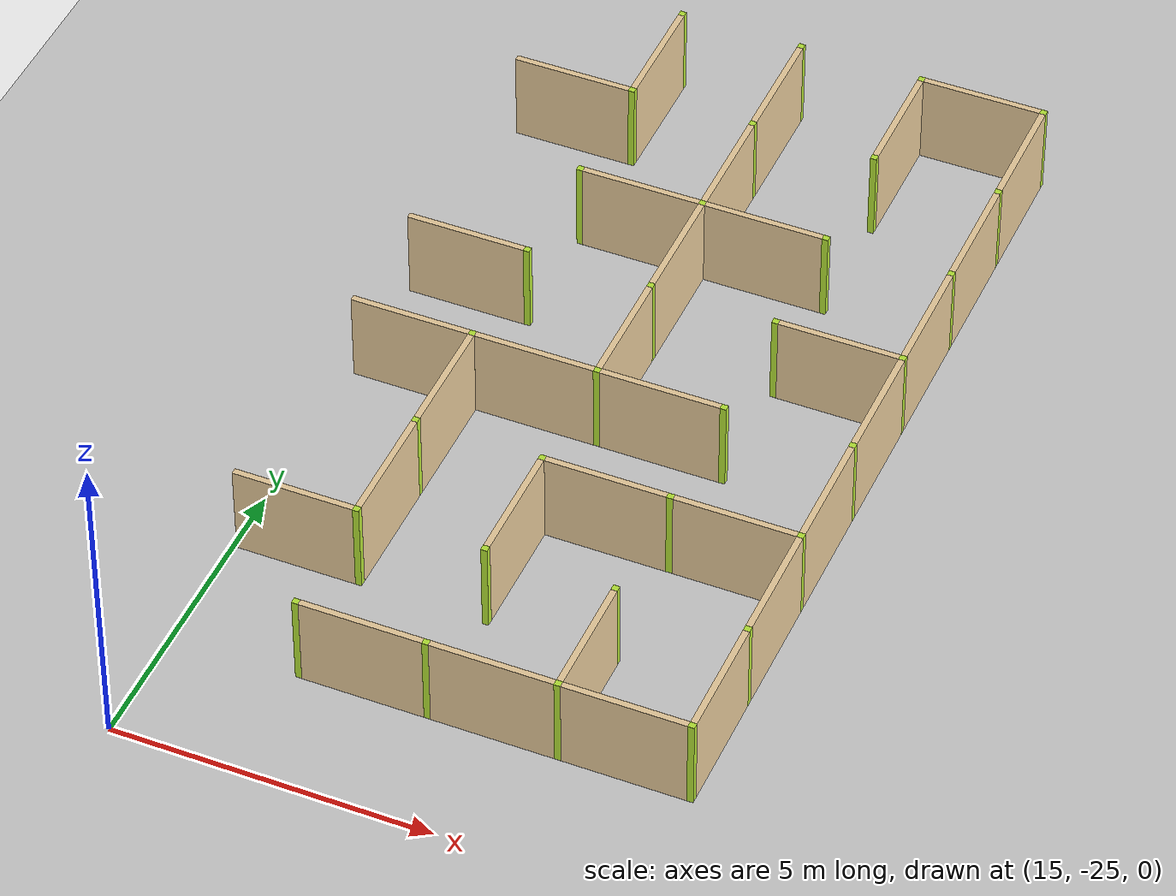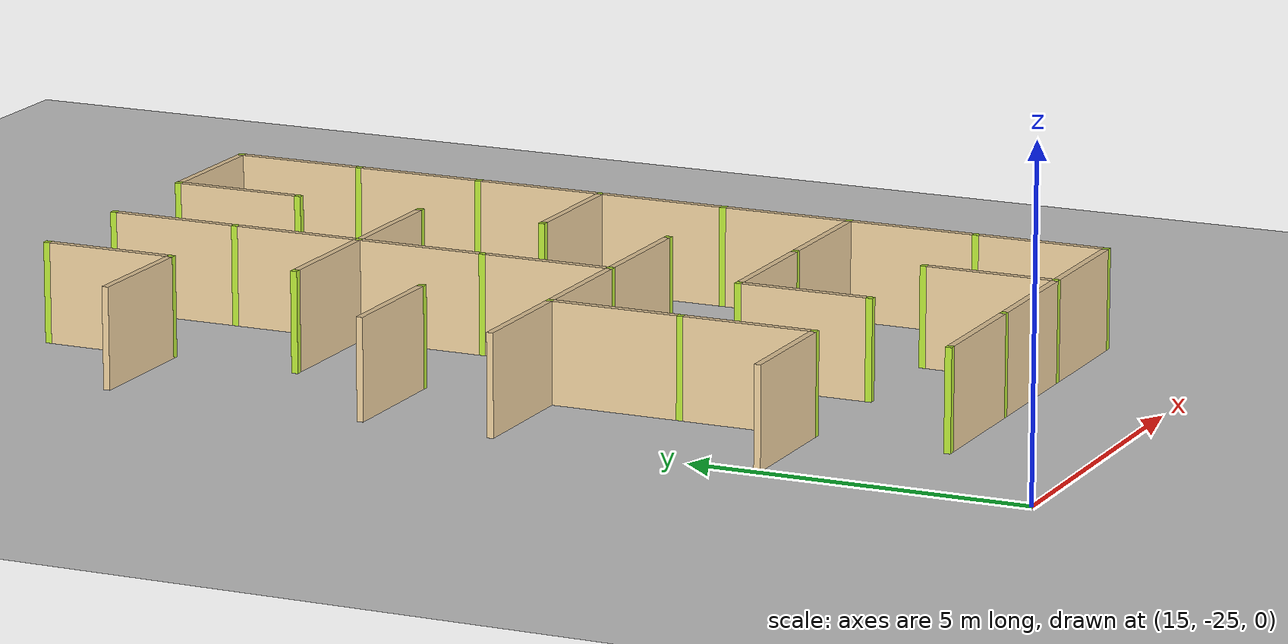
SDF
<sdf version="1.4">
 <world name="maze_world">
  <model name="ground">
   <static>true</static>
   <link name="ground_link">
    <collision name="collision1"><geometry><plane><normal>0 0 1</normal></plane></geometry></collision>
    <visual name="visual1"><geometry><plane><normal>0 0 1</normal><size>100 100</size></plane></geometry></visual>
   </link>
  </model>
  <model name="Untitled">
   <link name="Wall_12_8_v">
    <collision name="Wall_0_Collision">
     <geometry><box><size>1.9 0.1 1.5</size></box></geometry>
     <pose>0 0 0.75 0 -0 0</pose>
    </collision>
    <visual name="Wall_0_Visual">
     <pose>0 0 0.75 0 -0 0</pose>
     <geometry><box><size>1.9 0.1 1.5</size></box></geometry>
     <material>
      <script><uri>file://media/materials/scripts/gazebo.material</uri><name>Gazebo/Grey</name></script>
      <ambient>0.921569 0.807843 0.615686 1</ambient>
     </material>
     <meta><layer>0</layer></meta>
    </visual>
    <pose>17 -10.0 0 0 -0 1.5708</pose>
    <sensor name="my_contact" type="contact">
     <contact><collision>box_collision</collision><topic>/rover_collision</topic></contact>
    </sensor>
   </link>
   <link name="Joint_17_-9">
    <collision name="Wall_2_Collision">
     <geometry><box><size>0.1 0.1 1.5</size></box></geometry>
     <pose>0 0 0.75 0 -0 0</pose>
    </collision>
    <visual name="Wall_2_Visual">
     <pose>0 0 0.75 0 -0 0</pose>
     <geometry><box><size>0.1 0.1 1.5</size></box></geometry>
     <material>
      <script><uri>file://media/materials/scripts/gazebo.material</uri><name>Gazebo/Grey</name></script>
      <ambient>0.721569 0.907843 0.215686 1</ambient>
     </material>
     <meta><layer>0</layer></meta>
    </visual>
    <pose>17 -9 0 0 -0 0</pose>
    <sensor name="my_contact" type="contact">
     <contact><collision>box_collision</collision><topic>/rover_collision</topic></contact>
    </sensor>
   </link>
   <link name="Wall_13_8_v">
    <collision name="Wall_0_Collision">
     <geometry><box><size>1.9 0.1 1.5</size></box></geometry>
     <pose>0 0 0.75 0 -0 0</pose>
    </collision>
    <visual name="Wall_0_Visual">
     <pose>0 0 0.75 0 -0 0</pose>
     <geometry><box><size>1.9 0.1 1.5</size></box></geometry>
     <material>
      <script><uri>file://media/materials/scripts/gazebo.material</uri><name>Gazebo/Grey</name></script>
      <ambient>0.921569 0.807843 0.615686 1</ambient>
     </material>
     <meta><layer>0</layer></meta>
    </visual>
    <pose>19 -10.0 0 0 -0 1.5708</pose>
    <sensor name="my_contact" type="contact">
     <contact><collision>box_collision</collision><topic>/rover_collision</topic></contact>
    </sensor>
   </link>
   <link name="Joint_19_-9">
    <collision name="Wall_2_Collision">
     <geometry><box><size>0.1 0.1 1.5</size></box></geometry>
     <pose>0 0 0.75 0 -0 0</pose>
    </collision>
    <visual name="Wall_2_Visual">
     <pose>0 0 0.75 0 -0 0</pose>
     <geometry><box><size>0.1 0.1 1.5</size></box></geometry>
     <material>
      <script><uri>file://media/materials/scripts/gazebo.material</uri><name>Gazebo/Grey</name></script>
      <ambient>0.721569 0.907843 0.215686 1</ambient>
     </material>
     <meta><layer>0</layer></meta>
    </visual>
    <pose>19 -9 0 0 -0 0</pose>
    <sensor name="my_contact" type="contact">
     <contact><collision>box_collision</collision><topic>/rover_collision</topic></contact>
    </sensor>
   </link>
   <link name="Wall_14_8_h">
    <collision name="Wall_0_Collision">
     <geometry><box><size>1.9 0.1 1.5</size></box></geometry>
     <pose>0 0 0.75 0 -0 0</pose>
    </collision>
    <visual name="Wall_0_Visual">
     <pose>0 0 0.75 0 -0 0</pose>
     <geometry><box><size>1.9 0.1 1.5</size></box></geometry>
     <material>
      <script><uri>file://media/materials/scripts/gazebo.material</uri><name>Gazebo/Grey</name></script>
      <ambient>0.921569 0.807843 0.615686 1</ambient>
     </material>
     <meta><layer>0</layer></meta>
    </visual>
    <pose>22.0 -9 0 0 -0 0</pose>
    <sensor name="my_contact" type="contact">
     <contact><collision>box_collision</collision><topic>/rover_collision</topic></contact>
    </sensor>
   </link>
   <link name="Wall_14_8_v">
    <collision name="Wall_0_Collision">
     <geometry><box><size>1.9 0.1 1.5</size></box></geometry>
     <pose>0 0 0.75 0 -0 0</pose>
    </collision>
    <visual name="Wall_0_Visual">
     <pose>0 0 0.75 0 -0 0</pose>
     <geometry><box><size>1.9 0.1 1.5</size></box></geometry>
     <material>
      <script><uri>file://media/materials/scripts/gazebo.material</uri><name>Gazebo/Grey</name></script>
      <ambient>0.921569 0.807843 0.615686 1</ambient>
     </material>
     <meta><layer>0</layer></meta>
    </visual>
    <pose>21 -10.0 0 0 -0 1.5708</pose>
    <sensor name="my_contact" type="contact">
     <contact><collision>box_collision</collision><topic>/rover_collision</topic></contact>
    </sensor>
   </link>
   <link name="Joint_21_-9">
    <collision name="Wall_2_Collision">
     <geometry><box><size>0.1 0.1 1.5</size></box></geometry>
     <pose>0 0 0.75 0 -0 0</pose>
    </collision>
    <visual name="Wall_2_Visual">
     <pose>0 0 0.75 0 -0 0</pose>
     <geometry><box><size>0.1 0.1 1.5</size></box></geometry>
     <material>
      <script><uri>file://media/materials/scripts/gazebo.material</uri><name>Gazebo/Grey</name></script>
      <ambient>0.721569 0.907843 0.215686 1</ambient>
     </material>
     <meta><layer>0</layer></meta>
    </visual>
    <pose>21 -9 0 0 -0 0</pose>
    <sensor name="my_contact" type="contact">
     <contact><collision>box_collision</collision><topic>/rover_collision</topic></contact>
    </sensor>
   </link>
   <link name="Wall_15_8_v">
    <collision name="Wall_0_Collision">
     <geometry><box><size>1.9 0.1 1.5</size></box></geometry>
     <pose>0 0 0.75 0 -0 0</pose>
    </collision>
    <visual name="Wall_0_Visual">
     <pose>0 0 0.75 0 -0 0</pose>
     <geometry><box><size>1.9 0.1 1.5</size></box></geometry>
     <material>
      <script><uri>file://media/materials/scripts/gazebo.material</uri><name>Gazebo/Grey</name></script>
      <ambient>0.921569 0.807843 0.615686 1</ambient>
     </material>
     <meta><layer>0</layer></meta>
    </visual>
    <pose>23 -10.0 0 0 -0 1.5708</pose>
    <sensor name="my_contact" type="contact">
     <contact><collision>box_collision</collision><topic>/rover_collision</topic></contact>
    </sensor>
   </link>
   <link name="Joint_23_-9">
    <collision name="Wall_2_Collision">
     <geometry><box><size>0.1 0.1 1.5</size></box></geometry>
     <pose>0 0 0.75 0 -0 0</pose>
    </collision>
    <visual name="Wall_2_Visual">
     <pose>0 0 0.75 0 -0 0</pose>
     <geometry><box><size>0.1 0.1 1.5</size></box></geometry>
     <material>
      <script><uri>file://media/materials/scripts/gazebo.material</uri><name>Gazebo/Grey</name></script>
      <ambient>0.721569 0.907843 0.215686 1</ambient>
     </material>
     <meta><layer>0</layer></meta>
    </visual>
    <pose>23 -9 0 0 -0 0</pose>
    <sensor name="my_contact" type="contact">
     <contact><collision>box_collision</collision><topic>/rover_collision</topic></contact>
    </sensor>
   </link>
   <link name="Wall_11_9_h">
    <collision name="Wall_0_Collision">
     <geometry><box><size>1.9 0.1 1.5</size></box></geometry>
     <pose>0 0 0.75 0 -0 0</pose>
    </collision>
    <visual name="Wall_0_Visual">
     <pose>0 0 0.75 0 -0 0</pose>
     <geometry><box><size>1.9 0.1 1.5</size></box></geometry>
     <material>
      <script><uri>file://media/materials/scripts/gazebo.material</uri><name>Gazebo/Grey</name></script>
      <ambient>0.921569 0.807843 0.615686 1</ambient>
     </material>
     <meta><layer>0</layer></meta>
    </visual>
    <pose>16.0 -11 0 0 -0 0</pose>
    <sensor name="my_contact" type="contact">
     <contact><collision>box_collision</collision><topic>/rover_collision</topic></contact>
    </sensor>
   </link>
   <link name="Joint_17_-11">
    <collision name="Wall_2_Collision">
     <geometry><box><size>0.1 0.1 1.5</size></box></geometry>
     <pose>0 0 0.75 0 -0 0</pose>
    </collision>
    <visual name="Wall_2_Visual">
     <pose>0 0 0.75 0 -0 0</pose>
     <geometry><box><size>0.1 0.1 1.5</size></box></geometry>
     <material>
      <script><uri>file://media/materials/scripts/gazebo.material</uri><name>Gazebo/Grey</name></script>
      <ambient>0.721569 0.907843 0.215686 1</ambient>
     </material>
     <meta><layer>0</layer></meta>
    </visual>
    <pose>17 -11 0 0 -0 0</pose>
    <sensor name="my_contact" type="contact">
     <contact><collision>box_collision</collision><topic>/rover_collision</topic></contact>
    </sensor>
   </link>
   <link name="Wall_13_9_v">
    <collision name="Wall_0_Collision">
     <geometry><box><size>1.9 0.1 1.5</size></box></geometry>
     <pose>0 0 0.75 0 -0 0</pose>
    </collision>
    <visual name="Wall_0_Visual">
     <pose>0 0 0.75 0 -0 0</pose>
     <geometry><box><size>1.9 0.1 1.5</size></box></geometry>
     <material>
      <script><uri>file://media/materials/scripts/gazebo.material</uri><name>Gazebo/Grey</name></script>
      <ambient>0.921569 0.807843 0.615686 1</ambient>
     </material>
     <meta><layer>0</layer></meta>
    </visual>
    <pose>19 -12.0 0 0 -0 1.5708</pose>
    <sensor name="my_contact" type="contact">
     <contact><collision>box_collision</collision><topic>/rover_collision</topic></contact>
    </sensor>
   </link>
   <link name="Joint_19_-11">
    <collision name="Wall_2_Collision">
     <geometry><box><size>0.1 0.1 1.5</size></box></geometry>
     <pose>0 0 0.75 0 -0 0</pose>
    </collision>
    <visual name="Wall_2_Visual">
     <pose>0 0 0.75 0 -0 0</pose>
     <geometry><box><size>0.1 0.1 1.5</size></box></geometry>
     <material>
      <script><uri>file://media/materials/scripts/gazebo.material</uri><name>Gazebo/Grey</name></script>
      <ambient>0.721569 0.907843 0.215686 1</ambient>
     </material>
     <meta><layer>0</layer></meta>
    </visual>
    <pose>19 -11 0 0 -0 0</pose>
    <sensor name="my_contact" type="contact">
     <contact><collision>box_collision</collision><topic>/rover_collision</topic></contact>
    </sensor>
   </link>
   <link name="Joint_21_-11">
    <collision name="Wall_2_Collision">
     <geometry><box><size>0.1 0.1 1.5</size></box></geometry>
     <pose>0 0 0.75 0 -0 0</pose>
    </collision>
    <visual name="Wall_2_Visual">
     <pose>0 0 0.75 0 -0 0</pose>
     <geometry><box><size>0.1 0.1 1.5</size></box></geometry>
     <material>
      <script><uri>file://media/materials/scripts/gazebo.material</uri><name>Gazebo/Grey</name></script>
      <ambient>0.721569 0.907843 0.215686 1</ambient>
     </material>
     <meta><layer>0</layer></meta>
    </visual>
    <pose>21 -11 0 0 -0 0</pose>
    <sensor name="my_contact" type="contact">
     <contact><collision>box_collision</collision><topic>/rover_collision</topic></contact>
    </sensor>
   </link>
   <link name="Wall_15_9_v">
    <collision name="Wall_0_Collision">
     <geometry><box><size>1.9 0.1 1.5</size></box></geometry>
     <pose>0 0 0.75 0 -0 0</pose>
    </collision>
    <visual name="Wall_0_Visual">
     <pose>0 0 0.75 0 -0 0</pose>
     <geometry><box><size>1.9 0.1 1.5</size></box></geometry>
     <material>
      <script><uri>file://media/materials/scripts/gazebo.material</uri><name>Gazebo/Grey</name></script>
      <ambient>0.921569 0.807843 0.615686 1</ambient>
     </material>
     <meta><layer>0</layer></meta>
    </visual>
    <pose>23 -12.0 0 0 -0 1.5708</pose>
    <sensor name="my_contact" type="contact">
     <contact><collision>box_collision</collision><topic>/rover_collision</topic></contact>
    </sensor>
   </link>
   <link name="Joint_23_-11">
    <collision name="Wall_2_Collision">
     <geometry><box><size>0.1 0.1 1.5</size></box></geometry>
     <pose>0 0 0.75 0 -0 0</pose>
    </collision>
    <visual name="Wall_2_Visual">
     <pose>0 0 0.75 0 -0 0</pose>
     <geometry><box><size>0.1 0.1 1.5</size></box></geometry>
     <material>
      <script><uri>file://media/materials/scripts/gazebo.material</uri><name>Gazebo/Grey</name></script>
      <ambient>0.721569 0.907843 0.215686 1</ambient>
     </material>
     <meta><layer>0</layer></meta>
    </visual>
    <pose>23 -11 0 0 -0 0</pose>
    <sensor name="my_contact" type="contact">
     <contact><collision>box_collision</collision><topic>/rover_collision</topic></contact>
    </sensor>
   </link>
   <link name="Wall_12_10_h">
    <collision name="Wall_0_Collision">
     <geometry><box><size>1.9 0.1 1.5</size></box></geometry>
     <pose>0 0 0.75 0 -0 0</pose>
    </collision>
    <visual name="Wall_0_Visual">
     <pose>0 0 0.75 0 -0 0</pose>
     <geometry><box><size>1.9 0.1 1.5</size></box></geometry>
     <material>
      <script><uri>file://media/materials/scripts/gazebo.material</uri><name>Gazebo/Grey</name></script>
      <ambient>0.921569 0.807843 0.615686 1</ambient>
     </material>
     <meta><layer>0</layer></meta>
    </visual>
    <pose>18.0 -13 0 0 -0 0</pose>
    <sensor name="my_contact" type="contact">
     <contact><collision>box_collision</collision><topic>/rover_collision</topic></contact>
    </sensor>
   </link>
   <link name="Joint_17_-13">
    <collision name="Wall_2_Collision">
     <geometry><box><size>0.1 0.1 1.5</size></box></geometry>
     <pose>0 0 0.75 0 -0 0</pose>
    </collision>
    <visual name="Wall_2_Visual">
     <pose>0 0 0.75 0 -0 0</pose>
     <geometry><box><size>0.1 0.1 1.5</size></box></geometry>
     <material>
      <script><uri>file://media/materials/scripts/gazebo.material</uri><name>Gazebo/Grey</name></script>
      <ambient>0.721569 0.907843 0.215686 1</ambient>
     </material>
     <meta><layer>0</layer></meta>
    </visual>
    <pose>17 -13 0 0 -0 0</pose>
    <sensor name="my_contact" type="contact">
     <contact><collision>box_collision</collision><topic>/rover_collision</topic></contact>
    </sensor>
   </link>
   <link name="Wall_13_10_h">
    <collision name="Wall_0_Collision">
     <geometry><box><size>1.9 0.1 1.5</size></box></geometry>
     <pose>0 0 0.75 0 -0 0</pose>
    </collision>
    <visual name="Wall_0_Visual">
     <pose>0 0 0.75 0 -0 0</pose>
     <geometry><box><size>1.9 0.1 1.5</size></box></geometry>
     <material>
      <script><uri>file://media/materials/scripts/gazebo.material</uri><name>Gazebo/Grey</name></script>
      <ambient>0.921569 0.807843 0.615686 1</ambient>
     </material>
     <meta><layer>0</layer></meta>
    </visual>
    <pose>20.0 -13 0 0 -0 0</pose>
    <sensor name="my_contact" type="contact">
     <contact><collision>box_collision</collision><topic>/rover_collision</topic></contact>
    </sensor>
   </link>
   <link name="Wall_13_10_v">
    <collision name="Wall_0_Collision">
     <geometry><box><size>1.9 0.1 1.5</size></box></geometry>
     <pose>0 0 0.75 0 -0 0</pose>
    </collision>
    <visual name="Wall_0_Visual">
     <pose>0 0 0.75 0 -0 0</pose>
     <geometry><box><size>1.9 0.1 1.5</size></box></geometry>
     <material>
      <script><uri>file://media/materials/scripts/gazebo.material</uri><name>Gazebo/Grey</name></script>
      <ambient>0.921569 0.807843 0.615686 1</ambient>
     </material>
     <meta><layer>0</layer></meta>
    </visual>
    <pose>19 -14.0 0 0 -0 1.5708</pose>
    <sensor name="my_contact" type="contact">
     <contact><collision>box_collision</collision><topic>/rover_collision</topic></contact>
    </sensor>
   </link>
   <link name="Joint_19_-13">
    <collision name="Wall_2_Collision">
     <geometry><box><size>0.1 0.1 1.5</size></box></geometry>
     <pose>0 0 0.75 0 -0 0</pose>
    </collision>
    <visual name="Wall_2_Visual">
     <pose>0 0 0.75 0 -0 0</pose>
     <geometry><box><size>0.1 0.1 1.5</size></box></geometry>
     <material>
      <script><uri>file://media/materials/scripts/gazebo.material</uri><name>Gazebo/Grey</name></script>
      <ambient>0.721569 0.907843 0.215686 1</ambient>
     </material>
     <meta><layer>0</layer></meta>
    </visual>
    <pose>19 -13 0 0 -0 0</pose>
    <sensor name="my_contact" type="contact">
     <contact><collision>box_collision</collision><topic>/rover_collision</topic></contact>
    </sensor>
   </link>
   <link name="Joint_21_-13">
    <collision name="Wall_2_Collision">
     <geometry><box><size>0.1 0.1 1.5</size></box></geometry>
     <pose>0 0 0.75 0 -0 0</pose>
    </collision>
    <visual name="Wall_2_Visual">
     <pose>0 0 0.75 0 -0 0</pose>
     <geometry><box><size>0.1 0.1 1.5</size></box></geometry>
     <material>
      <script><uri>file://media/materials/scripts/gazebo.material</uri><name>Gazebo/Grey</name></script>
      <ambient>0.721569 0.907843 0.215686 1</ambient>
     </material>
     <meta><layer>0</layer></meta>
    </visual>
    <pose>21 -13 0 0 -0 0</pose>
    <sensor name="my_contact" type="contact">
     <contact><collision>box_collision</collision><topic>/rover_collision</topic></contact>
    </sensor>
   </link>
   <link name="Wall_15_10_v">
    <collision name="Wall_0_Collision">
     <geometry><box><size>1.9 0.1 1.5</size></box></geometry>
     <pose>0 0 0.75 0 -0 0</pose>
    </collision>
    <visual name="Wall_0_Visual">
     <pose>0 0 0.75 0 -0 0</pose>
     <geometry><box><size>1.9 0.1 1.5</size></box></geometry>
     <material>
      <script><uri>file://media/materials/scripts/gazebo.material</uri><name>Gazebo/Grey</name></script>
      <ambient>0.921569 0.807843 0.615686 1</ambient>
     </material>
     <meta><layer>0</layer></meta>
    </visual>
    <pose>23 -14.0 0 0 -0 1.5708</pose>
    <sensor name="my_contact" type="contact">
     <contact><collision>box_collision</collision><topic>/rover_collision</topic></contact>
    </sensor>
   </link>
   <link name="Joint_23_-13">
    <collision name="Wall_2_Collision">
     <geometry><box><size>0.1 0.1 1.5</size></box></geometry>
     <pose>0 0 0.75 0 -0 0</pose>
    </collision>
    <visual name="Wall_2_Visual">
     <pose>0 0 0.75 0 -0 0</pose>
     <geometry><box><size>0.1 0.1 1.5</size></box></geometry>
     <material>
      <script><uri>file://media/materials/scripts/gazebo.material</uri><name>Gazebo/Grey</name></script>
      <ambient>0.721569 0.907843 0.215686 1</ambient>
     </material>
     <meta><layer>0</layer></meta>
    </visual>
    <pose>23 -13 0 0 -0 0</pose>
    <sensor name="my_contact" type="contact">
     <contact><collision>box_collision</collision><topic>/rover_collision</topic></contact>
    </sensor>
   </link>
   <link name="Wall_11_11_h">
    <collision name="Wall_0_Collision">
     <geometry><box><size>1.9 0.1 1.5</size></box></geometry>
     <pose>0 0 0.75 0 -0 0</pose>
    </collision>
    <visual name="Wall_0_Visual">
     <pose>0 0 0.75 0 -0 0</pose>
     <geometry><box><size>1.9 0.1 1.5</size></box></geometry>
     <material>
      <script><uri>file://media/materials/scripts/gazebo.material</uri><name>Gazebo/Grey</name></script>
      <ambient>0.921569 0.807843 0.615686 1</ambient>
     </material>
     <meta><layer>0</layer></meta>
    </visual>
    <pose>16.0 -15 0 0 -0 0</pose>
    <sensor name="my_contact" type="contact">
     <contact><collision>box_collision</collision><topic>/rover_collision</topic></contact>
    </sensor>
   </link>
   <link name="Joint_17_-15">
    <collision name="Wall_2_Collision">
     <geometry><box><size>0.1 0.1 1.5</size></box></geometry>
     <pose>0 0 0.75 0 -0 0</pose>
    </collision>
    <visual name="Wall_2_Visual">
     <pose>0 0 0.75 0 -0 0</pose>
     <geometry><box><size>0.1 0.1 1.5</size></box></geometry>
     <material>
      <script><uri>file://media/materials/scripts/gazebo.material</uri><name>Gazebo/Grey</name></script>
      <ambient>0.721569 0.907843 0.215686 1</ambient>
     </material>
     <meta><layer>0</layer></meta>
    </visual>
    <pose>17 -15 0 0 -0 0</pose>
    <sensor name="my_contact" type="contact">
     <contact><collision>box_collision</collision><topic>/rover_collision</topic></contact>
    </sensor>
   </link>
   <link name="Wall_13_11_v">
    <collision name="Wall_0_Collision">
     <geometry><box><size>1.9 0.1 1.5</size></box></geometry>
     <pose>0 0 0.75 0 -0 0</pose>
    </collision>
    <visual name="Wall_0_Visual">
     <pose>0 0 0.75 0 -0 0</pose>
     <geometry><box><size>1.9 0.1 1.5</size></box></geometry>
     <material>
      <script><uri>file://media/materials/scripts/gazebo.material</uri><name>Gazebo/Grey</name></script>
      <ambient>0.921569 0.807843 0.615686 1</ambient>
     </material>
     <meta><layer>0</layer></meta>
    </visual>
    <pose>19 -16.0 0 0 -0 1.5708</pose>
    <sensor name="my_contact" type="contact">
     <contact><collision>box_collision</collision><topic>/rover_collision</topic></contact>
    </sensor>
   </link>
   <link name="Joint_19_-15">
    <collision name="Wall_2_Collision">
     <geometry><box><size>0.1 0.1 1.5</size></box></geometry>
     <pose>0 0 0.75 0 -0 0</pose>
    </collision>
    <visual name="Wall_2_Visual">
     <pose>0 0 0.75 0 -0 0</pose>
     <geometry><box><size>0.1 0.1 1.5</size></box></geometry>
     <material>
      <script><uri>file://media/materials/scripts/gazebo.material</uri><name>Gazebo/Grey</name></script>
      <ambient>0.721569 0.907843 0.215686 1</ambient>
     </material>
     <meta><layer>0</layer></meta>
    </visual>
    <pose>19 -15 0 0 -0 0</pose>
    <sensor name="my_contact" type="contact">
     <contact><collision>box_collision</collision><topic>/rover_collision</topic></contact>
    </sensor>
   </link>
   <link name="Wall_14_11_h">
    <collision name="Wall_0_Collision">
     <geometry><box><size>1.9 0.1 1.5</size></box></geometry>
     <pose>0 0 0.75 0 -0 0</pose>
    </collision>
    <visual name="Wall_0_Visual">
     <pose>0 0 0.75 0 -0 0</pose>
     <geometry><box><size>1.9 0.1 1.5</size></box></geometry>
     <material>
      <script><uri>file://media/materials/scripts/gazebo.material</uri><name>Gazebo/Grey</name></script>
      <ambient>0.921569 0.807843 0.615686 1</ambient>
     </material>
     <meta><layer>0</layer></meta>
    </visual>
    <pose>22.0 -15 0 0 -0 0</pose>
    <sensor name="my_contact" type="contact">
     <contact><collision>box_collision</collision><topic>/rover_collision</topic></contact>
    </sensor>
   </link>
   <link name="Joint_21_-15">
    <collision name="Wall_2_Collision">
     <geometry><box><size>0.1 0.1 1.5</size></box></geometry>
     <pose>0 0 0.75 0 -0 0</pose>
    </collision>
    <visual name="Wall_2_Visual">
     <pose>0 0 0.75 0 -0 0</pose>
     <geometry><box><size>0.1 0.1 1.5</size></box></geometry>
     <material>
      <script><uri>file://media/materials/scripts/gazebo.material</uri><name>Gazebo/Grey</name></script>
      <ambient>0.721569 0.907843 0.215686 1</ambient>
     </material>
     <meta><layer>0</layer></meta>
    </visual>
    <pose>21 -15 0 0 -0 0</pose>
    <sensor name="my_contact" type="contact">
     <contact><collision>box_collision</collision><topic>/rover_collision</topic></contact>
    </sensor>
   </link>
   <link name="Wall_15_11_v">
    <collision name="Wall_0_Collision">
     <geometry><box><size>1.9 0.1 1.5</size></box></geometry>
     <pose>0 0 0.75 0 -0 0</pose>
    </collision>
    <visual name="Wall_0_Visual">
     <pose>0 0 0.75 0 -0 0</pose>
     <geometry><box><size>1.9 0.1 1.5</size></box></geometry>
     <material>
      <script><uri>file://media/materials/scripts/gazebo.material</uri><name>Gazebo/Grey</name></script>
      <ambient>0.921569 0.807843 0.615686 1</ambient>
     </material>
     <meta><layer>0</layer></meta>
    </visual>
    <pose>23 -16.0 0 0 -0 1.5708</pose>
    <sensor name="my_contact" type="contact">
     <contact><collision>box_collision</collision><topic>/rover_collision</topic></contact>
    </sensor>
   </link>
   <link name="Joint_23_-15">
    <collision name="Wall_2_Collision">
     <geometry><box><size>0.1 0.1 1.5</size></box></geometry>
     <pose>0 0 0.75 0 -0 0</pose>
    </collision>
    <visual name="Wall_2_Visual">
     <pose>0 0 0.75 0 -0 0</pose>
     <geometry><box><size>0.1 0.1 1.5</size></box></geometry>
     <material>
      <script><uri>file://media/materials/scripts/gazebo.material</uri><name>Gazebo/Grey</name></script>
      <ambient>0.721569 0.907843 0.215686 1</ambient>
     </material>
     <meta><layer>0</layer></meta>
    </visual>
    <pose>23 -15 0 0 -0 0</pose>
    <sensor name="my_contact" type="contact">
     <contact><collision>box_collision</collision><topic>/rover_collision</topic></contact>
    </sensor>
   </link>
   <link name="Wall_11_12_h">
    <collision name="Wall_0_Collision">
     <geometry><box><size>1.9 0.1 1.5</size></box></geometry>
     <pose>0 0 0.75 0 -0 0</pose>
    </collision>
    <visual name="Wall_0_Visual">
     <pose>0 0 0.75 0 -0 0</pose>
     <geometry><box><size>1.9 0.1 1.5</size></box></geometry>
     <material>
      <script><uri>file://media/materials/scripts/gazebo.material</uri><name>Gazebo/Grey</name></script>
      <ambient>0.921569 0.807843 0.615686 1</ambient>
     </material>
     <meta><layer>0</layer></meta>
    </visual>
    <pose>16.0 -17 0 0 -0 0</pose>
    <sensor name="my_contact" type="contact">
     <contact><collision>box_collision</collision><topic>/rover_collision</topic></contact>
    </sensor>
   </link>
   <link name="Wall_12_12_h">
    <collision name="Wall_0_Collision">
     <geometry><box><size>1.9 0.1 1.5</size></box></geometry>
     <pose>0 0 0.75 0 -0 0</pose>
    </collision>
    <visual name="Wall_0_Visual">
     <pose>0 0 0.75 0 -0 0</pose>
     <geometry><box><size>1.9 0.1 1.5</size></box></geometry>
     <material>
      <script><uri>file://media/materials/scripts/gazebo.material</uri><name>Gazebo/Grey</name></script>
      <ambient>0.921569 0.807843 0.615686 1</ambient>
     </material>
     <meta><layer>0</layer></meta>
    </visual>
    <pose>18.0 -17 0 0 -0 0</pose>
    <sensor name="my_contact" type="contact">
     <contact><collision>box_collision</collision><topic>/rover_collision</topic></contact>
    </sensor>
   </link>
   <link name="Wall_12_12_v">
    <collision name="Wall_0_Collision">
     <geometry><box><size>1.9 0.1 1.5</size></box></geometry>
     <pose>0 0 0.75 0 -0 0</pose>
    </collision>
    <visual name="Wall_0_Visual">
     <pose>0 0 0.75 0 -0 0</pose>
     <geometry><box><size>1.9 0.1 1.5</size></box></geometry>
     <material>
      <script><uri>file://media/materials/scripts/gazebo.material</uri><name>Gazebo/Grey</name></script>
      <ambient>0.921569 0.807843 0.615686 1</ambient>
     </material>
     <meta><layer>0</layer></meta>
    </visual>
    <pose>17 -18.0 0 0 -0 1.5708</pose>
    <sensor name="my_contact" type="contact">
     <contact><collision>box_collision</collision><topic>/rover_collision</topic></contact>
    </sensor>
   </link>
   <link name="Joint_17_-17">
    <collision name="Wall_2_Collision">
     <geometry><box><size>0.1 0.1 1.5</size></box></geometry>
     <pose>0 0 0.75 0 -0 0</pose>
    </collision>
    <visual name="Wall_2_Visual">
     <pose>0 0 0.75 0 -0 0</pose>
     <geometry><box><size>0.1 0.1 1.5</size></box></geometry>
     <material>
      <script><uri>file://media/materials/scripts/gazebo.material</uri><name>Gazebo/Grey</name></script>
      <ambient>0.721569 0.907843 0.215686 1</ambient>
     </material>
     <meta><layer>0</layer></meta>
    </visual>
    <pose>17 -17 0 0 -0 0</pose>
    <sensor name="my_contact" type="contact">
     <contact><collision>box_collision</collision><topic>/rover_collision</topic></contact>
    </sensor>
   </link>
   <link name="Wall_13_12_h">
    <collision name="Wall_0_Collision">
     <geometry><box><size>1.9 0.1 1.5</size></box></geometry>
     <pose>0 0 0.75 0 -0 0</pose>
    </collision>
    <visual name="Wall_0_Visual">
     <pose>0 0 0.75 0 -0 0</pose>
     <geometry><box><size>1.9 0.1 1.5</size></box></geometry>
     <material>
      <script><uri>file://media/materials/scripts/gazebo.material</uri><name>Gazebo/Grey</name></script>
      <ambient>0.921569 0.807843 0.615686 1</ambient>
     </material>
     <meta><layer>0</layer></meta>
    </visual>
    <pose>20.0 -17 0 0 -0 0</pose>
    <sensor name="my_contact" type="contact">
     <contact><collision>box_collision</collision><topic>/rover_collision</topic></contact>
    </sensor>
   </link>
   <link name="Joint_19_-17">
    <collision name="Wall_2_Collision">
     <geometry><box><size>0.1 0.1 1.5</size></box></geometry>
     <pose>0 0 0.75 0 -0 0</pose>
    </collision>
    <visual name="Wall_2_Visual">
     <pose>0 0 0.75 0 -0 0</pose>
     <geometry><box><size>0.1 0.1 1.5</size></box></geometry>
     <material>
      <script><uri>file://media/materials/scripts/gazebo.material</uri><name>Gazebo/Grey</name></script>
      <ambient>0.721569 0.907843 0.215686 1</ambient>
     </material>
     <meta><layer>0</layer></meta>
    </visual>
    <pose>19 -17 0 0 -0 0</pose>
    <sensor name="my_contact" type="contact">
     <contact><collision>box_collision</collision><topic>/rover_collision</topic></contact>
    </sensor>
   </link>
   <link name="Joint_21_-17">
    <collision name="Wall_2_Collision">
     <geometry><box><size>0.1 0.1 1.5</size></box></geometry>
     <pose>0 0 0.75 0 -0 0</pose>
    </collision>
    <visual name="Wall_2_Visual">
     <pose>0 0 0.75 0 -0 0</pose>
     <geometry><box><size>0.1 0.1 1.5</size></box></geometry>
     <material>
      <script><uri>file://media/materials/scripts/gazebo.material</uri><name>Gazebo/Grey</name></script>
      <ambient>0.721569 0.907843 0.215686 1</ambient>
     </material>
     <meta><layer>0</layer></meta>
    </visual>
    <pose>21 -17 0 0 -0 0</pose>
    <sensor name="my_contact" type="contact">
     <contact><collision>box_collision</collision><topic>/rover_collision</topic></contact>
    </sensor>
   </link>
   <link name="Wall_15_12_v">
    <collision name="Wall_0_Collision">
     <geometry><box><size>1.9 0.1 1.5</size></box></geometry>
     <pose>0 0 0.75 0 -0 0</pose>
    </collision>
    <visual name="Wall_0_Visual">
     <pose>0 0 0.75 0 -0 0</pose>
     <geometry><box><size>1.9 0.1 1.5</size></box></geometry>
     <material>
      <script><uri>file://media/materials/scripts/gazebo.material</uri><name>Gazebo/Grey</name></script>
      <ambient>0.921569 0.807843 0.615686 1</ambient>
     </material>
     <meta><layer>0</layer></meta>
    </visual>
    <pose>23 -18.0 0 0 -0 1.5708</pose>
    <sensor name="my_contact" type="contact">
     <contact><collision>box_collision</collision><topic>/rover_collision</topic></contact>
    </sensor>
   </link>
   <link name="Joint_23_-17">
    <collision name="Wall_2_Collision">
     <geometry><box><size>0.1 0.1 1.5</size></box></geometry>
     <pose>0 0 0.75 0 -0 0</pose>
    </collision>
    <visual name="Wall_2_Visual">
     <pose>0 0 0.75 0 -0 0</pose>
     <geometry><box><size>0.1 0.1 1.5</size></box></geometry>
     <material>
      <script><uri>file://media/materials/scripts/gazebo.material</uri><name>Gazebo/Grey</name></script>
      <ambient>0.721569 0.907843 0.215686 1</ambient>
     </material>
     <meta><layer>0</layer></meta>
    </visual>
    <pose>23 -17 0 0 -0 0</pose>
    <sensor name="my_contact" type="contact">
     <contact><collision>box_collision</collision><topic>/rover_collision</topic></contact>
    </sensor>
   </link>
   <link name="Wall_12_13_v">
    <collision name="Wall_0_Collision">
     <geometry><box><size>1.9 0.1 1.5</size></box></geometry>
     <pose>0 0 0.75 0 -0 0</pose>
    </collision>
    <visual name="Wall_0_Visual">
     <pose>0 0 0.75 0 -0 0</pose>
     <geometry><box><size>1.9 0.1 1.5</size></box></geometry>
     <material>
      <script><uri>file://media/materials/scripts/gazebo.material</uri><name>Gazebo/Grey</name></script>
      <ambient>0.921569 0.807843 0.615686 1</ambient>
     </material>
     <meta><layer>0</layer></meta>
    </visual>
    <pose>17 -20.0 0 0 -0 1.5708</pose>
    <sensor name="my_contact" type="contact">
     <contact><collision>box_collision</collision><topic>/rover_collision</topic></contact>
    </sensor>
   </link>
   <link name="Joint_17_-19">
    <collision name="Wall_2_Collision">
     <geometry><box><size>0.1 0.1 1.5</size></box></geometry>
     <pose>0 0 0.75 0 -0 0</pose>
    </collision>
    <visual name="Wall_2_Visual">
     <pose>0 0 0.75 0 -0 0</pose>
     <geometry><box><size>0.1 0.1 1.5</size></box></geometry>
     <material>
      <script><uri>file://media/materials/scripts/gazebo.material</uri><name>Gazebo/Grey</name></script>
      <ambient>0.721569 0.907843 0.215686 1</ambient>
     </material>
     <meta><layer>0</layer></meta>
    </visual>
    <pose>17 -19 0 0 -0 0</pose>
    <sensor name="my_contact" type="contact">
     <contact><collision>box_collision</collision><topic>/rover_collision</topic></contact>
    </sensor>
   </link>
   <link name="Wall_13_13_h">
    <collision name="Wall_0_Collision">
     <geometry><box><size>1.9 0.1 1.5</size></box></geometry>
     <pose>0 0 0.75 0 -0 0</pose>
    </collision>
    <visual name="Wall_0_Visual">
     <pose>0 0 0.75 0 -0 0</pose>
     <geometry><box><size>1.9 0.1 1.5</size></box></geometry>
     <material>
      <script><uri>file://media/materials/scripts/gazebo.material</uri><name>Gazebo/Grey</name></script>
      <ambient>0.921569 0.807843 0.615686 1</ambient>
     </material>
     <meta><layer>0</layer></meta>
    </visual>
    <pose>20.0 -19 0 0 -0 0</pose>
    <sensor name="my_contact" type="contact">
     <contact><collision>box_collision</collision><topic>/rover_collision</topic></contact>
    </sensor>
   </link>
   <link name="Wall_13_13_v">
    <collision name="Wall_0_Collision">
     <geometry><box><size>1.9 0.1 1.5</size></box></geometry>
     <pose>0 0 0.75 0 -0 0</pose>
    </collision>
    <visual name="Wall_0_Visual">
     <pose>0 0 0.75 0 -0 0</pose>
     <geometry><box><size>1.9 0.1 1.5</size></box></geometry>
     <material>
      <script><uri>file://media/materials/scripts/gazebo.material</uri><name>Gazebo/Grey</name></script>
      <ambient>0.921569 0.807843 0.615686 1</ambient>
     </material>
     <meta><layer>0</layer></meta>
    </visual>
    <pose>19 -20.0 0 0 -0 1.5708</pose>
    <sensor name="my_contact" type="contact">
     <contact><collision>box_collision</collision><topic>/rover_collision</topic></contact>
    </sensor>
   </link>
   <link name="Joint_19_-19">
    <collision name="Wall_2_Collision">
     <geometry><box><size>0.1 0.1 1.5</size></box></geometry>
     <pose>0 0 0.75 0 -0 0</pose>
    </collision>
    <visual name="Wall_2_Visual">
     <pose>0 0 0.75 0 -0 0</pose>
     <geometry><box><size>0.1 0.1 1.5</size></box></geometry>
     <material>
      <script><uri>file://media/materials/scripts/gazebo.material</uri><name>Gazebo/Grey</name></script>
      <ambient>0.721569 0.907843 0.215686 1</ambient>
     </material>
     <meta><layer>0</layer></meta>
    </visual>
    <pose>19 -19 0 0 -0 0</pose>
    <sensor name="my_contact" type="contact">
     <contact><collision>box_collision</collision><topic>/rover_collision</topic></contact>
    </sensor>
   </link>
   <link name="Wall_14_13_h">
    <collision name="Wall_0_Collision">
     <geometry><box><size>1.9 0.1 1.5</size></box></geometry>
     <pose>0 0 0.75 0 -0 0</pose>
    </collision>
    <visual name="Wall_0_Visual">
     <pose>0 0 0.75 0 -0 0</pose>
     <geometry><box><size>1.9 0.1 1.5</size></box></geometry>
     <material>
      <script><uri>file://media/materials/scripts/gazebo.material</uri><name>Gazebo/Grey</name></script>
      <ambient>0.921569 0.807843 0.615686 1</ambient>
     </material>
     <meta><layer>0</layer></meta>
    </visual>
    <pose>22.0 -19 0 0 -0 0</pose>
    <sensor name="my_contact" type="contact">
     <contact><collision>box_collision</collision><topic>/rover_collision</topic></contact>
    </sensor>
   </link>
   <link name="Joint_21_-19">
    <collision name="Wall_2_Collision">
     <geometry><box><size>0.1 0.1 1.5</size></box></geometry>
     <pose>0 0 0.75 0 -0 0</pose>
    </collision>
    <visual name="Wall_2_Visual">
     <pose>0 0 0.75 0 -0 0</pose>
     <geometry><box><size>0.1 0.1 1.5</size></box></geometry>
     <material>
      <script><uri>file://media/materials/scripts/gazebo.material</uri><name>Gazebo/Grey</name></script>
      <ambient>0.721569 0.907843 0.215686 1</ambient>
     </material>
     <meta><layer>0</layer></meta>
    </visual>
    <pose>21 -19 0 0 -0 0</pose>
    <sensor name="my_contact" type="contact">
     <contact><collision>box_collision</collision><topic>/rover_collision</topic></contact>
    </sensor>
   </link>
   <link name="Wall_15_13_v">
    <collision name="Wall_0_Collision">
     <geometry><box><size>1.9 0.1 1.5</size></box></geometry>
     <pose>0 0 0.75 0 -0 0</pose>
    </collision>
    <visual name="Wall_0_Visual">
     <pose>0 0 0.75 0 -0 0</pose>
     <geometry><box><size>1.9 0.1 1.5</size></box></geometry>
     <material>
      <script><uri>file://media/materials/scripts/gazebo.material</uri><name>Gazebo/Grey</name></script>
      <ambient>0.921569 0.807843 0.615686 1</ambient>
     </material>
     <meta><layer>0</layer></meta>
    </visual>
    <pose>23 -20.0 0 0 -0 1.5708</pose>
    <sensor name="my_contact" type="contact">
     <contact><collision>box_collision</collision><topic>/rover_collision</topic></contact>
    </sensor>
   </link>
   <link name="Joint_23_-19">
    <collision name="Wall_2_Collision">
     <geometry><box><size>0.1 0.1 1.5</size></box></geometry>
     <pose>0 0 0.75 0 -0 0</pose>
    </collision>
    <visual name="Wall_2_Visual">
     <pose>0 0 0.75 0 -0 0</pose>
     <geometry><box><size>0.1 0.1 1.5</size></box></geometry>
     <material>
      <script><uri>file://media/materials/scripts/gazebo.material</uri><name>Gazebo/Grey</name></script>
      <ambient>0.721569 0.907843 0.215686 1</ambient>
     </material>
     <meta><layer>0</layer></meta>
    </visual>
    <pose>23 -19 0 0 -0 0</pose>
    <sensor name="my_contact" type="contact">
     <contact><collision>box_collision</collision><topic>/rover_collision</topic></contact>
    </sensor>
   </link>
   <link name="Wall_11_14_h">
    <collision name="Wall_0_Collision">
     <geometry><box><size>1.9 0.1 1.5</size></box></geometry>
     <pose>0 0 0.75 0 -0 0</pose>
    </collision>
    <visual name="Wall_0_Visual">
     <pose>0 0 0.75 0 -0 0</pose>
     <geometry><box><size>1.9 0.1 1.5</size></box></geometry>
     <material>
      <script><uri>file://media/materials/scripts/gazebo.material</uri><name>Gazebo/Grey</name></script>
      <ambient>0.921569 0.807843 0.615686 1</ambient>
     </material>
     <meta><layer>0</layer></meta>
    </visual>
    <pose>16.0 -21 0 0 -0 0</pose>
    <sensor name="my_contact" type="contact">
     <contact><collision>box_collision</collision><topic>/rover_collision</topic></contact>
    </sensor>
   </link>
   <link name="Joint_17_-21">
    <collision name="Wall_2_Collision">
     <geometry><box><size>0.1 0.1 1.5</size></box></geometry>
     <pose>0 0 0.75 0 -0 0</pose>
    </collision>
    <visual name="Wall_2_Visual">
     <pose>0 0 0.75 0 -0 0</pose>
     <geometry><box><size>0.1 0.1 1.5</size></box></geometry>
     <material>
      <script><uri>file://media/materials/scripts/gazebo.material</uri><name>Gazebo/Grey</name></script>
      <ambient>0.721569 0.907843 0.215686 1</ambient>
     </material>
     <meta><layer>0</layer></meta>
    </visual>
    <pose>17 -21 0 0 -0 0</pose>
    <sensor name="my_contact" type="contact">
     <contact><collision>box_collision</collision><topic>/rover_collision</topic></contact>
    </sensor>
   </link>
   <link name="Wall_12_15_h">
    <collision name="Wall_0_Collision">
     <geometry><box><size>1.9 0.1 1.5</size></box></geometry>
     <pose>0 0 0.75 0 -0 0</pose>
    </collision>
    <visual name="Wall_0_Visual">
     <pose>0 0 0.75 0 -0 0</pose>
     <geometry><box><size>1.9 0.1 1.5</size></box></geometry>
     <material>
      <script><uri>file://media/materials/scripts/gazebo.material</uri><name>Gazebo/Grey</name></script>
      <ambient>0.921569 0.807843 0.615686 1</ambient>
     </material>
     <meta><layer>0</layer></meta>
    </visual>
    <pose>18.0 -23 0 0 -0 0</pose>
    <sensor name="my_contact" type="contact">
     <contact><collision>box_collision</collision><topic>/rover_collision</topic></contact>
    </sensor>
   </link>
   <link name="Joint_17_-23">
    <collision name="Wall_2_Collision">
     <geometry><box><size>0.1 0.1 1.5</size></box></geometry>
     <pose>0 0 0.75 0 -0 0</pose>
    </collision>
    <visual name="Wall_2_Visual">
     <pose>0 0 0.75 0 -0 0</pose>
     <geometry><box><size>0.1 0.1 1.5</size></box></geometry>
     <material>
      <script><uri>file://media/materials/scripts/gazebo.material</uri><name>Gazebo/Grey</name></script>
      <ambient>0.721569 0.907843 0.215686 1</ambient>
     </material>
     <meta><layer>0</layer></meta>
    </visual>
    <pose>17 -23 0 0 -0 0</pose>
    <sensor name="my_contact" type="contact">
     <contact><collision>box_collision</collision><topic>/rover_collision</topic></contact>
    </sensor>
   </link>
   <link name="Joint_19_-21">
    <collision name="Wall_2_Collision">
     <geometry><box><size>0.1 0.1 1.5</size></box></geometry>
     <pose>0 0 0.75 0 -0 0</pose>
    </collision>
    <visual name="Wall_2_Visual">
     <pose>0 0 0.75 0 -0 0</pose>
     <geometry><box><size>0.1 0.1 1.5</size></box></geometry>
     <material>
      <script><uri>file://media/materials/scripts/gazebo.material</uri><name>Gazebo/Grey</name></script>
      <ambient>0.721569 0.907843 0.215686 1</ambient>
     </material>
     <meta><layer>0</layer></meta>
    </visual>
    <pose>19 -21 0 0 -0 0</pose>
    <sensor name="my_contact" type="contact">
     <contact><collision>box_collision</collision><topic>/rover_collision</topic></contact>
    </sensor>
   </link>
   <link name="Wall_13_15_h">
    <collision name="Wall_0_Collision">
     <geometry><box><size>1.9 0.1 1.5</size></box></geometry>
     <pose>0 0 0.75 0 -0 0</pose>
    </collision>
    <visual name="Wall_0_Visual">
     <pose>0 0 0.75 0 -0 0</pose>
     <geometry><box><size>1.9 0.1 1.5</size></box></geometry>
     <material>
      <script><uri>file://media/materials/scripts/gazebo.material</uri><name>Gazebo/Grey</name></script>
      <ambient>0.921569 0.807843 0.615686 1</ambient>
     </material>
     <meta><layer>0</layer></meta>
    </visual>
    <pose>20.0 -23 0 0 -0 0</pose>
    <sensor name="my_contact" type="contact">
     <contact><collision>box_collision</collision><topic>/rover_collision</topic></contact>
    </sensor>
   </link>
   <link name="Joint_19_-23">
    <collision name="Wall_2_Collision">
     <geometry><box><size>0.1 0.1 1.5</size></box></geometry>
     <pose>0 0 0.75 0 -0 0</pose>
    </collision>
    <visual name="Wall_2_Visual">
     <pose>0 0 0.75 0 -0 0</pose>
     <geometry><box><size>0.1 0.1 1.5</size></box></geometry>
     <material>
      <script><uri>file://media/materials/scripts/gazebo.material</uri><name>Gazebo/Grey</name></script>
      <ambient>0.721569 0.907843 0.215686 1</ambient>
     </material>
     <meta><layer>0</layer></meta>
    </visual>
    <pose>19 -23 0 0 -0 0</pose>
    <sensor name="my_contact" type="contact">
     <contact><collision>box_collision</collision><topic>/rover_collision</topic></contact>
    </sensor>
   </link>
   <link name="Wall_14_14_v">
    <collision name="Wall_0_Collision">
     <geometry><box><size>1.9 0.1 1.5</size></box></geometry>
     <pose>0 0 0.75 0 -0 0</pose>
    </collision>
    <visual name="Wall_0_Visual">
     <pose>0 0 0.75 0 -0 0</pose>
     <geometry><box><size>1.9 0.1 1.5</size></box></geometry>
     <material>
      <script><uri>file://media/materials/scripts/gazebo.material</uri><name>Gazebo/Grey</name></script>
      <ambient>0.921569 0.807843 0.615686 1</ambient>
     </material>
     <meta><layer>0</layer></meta>
    </visual>
    <pose>21 -22.0 0 0 -0 1.5708</pose>
    <sensor name="my_contact" type="contact">
     <contact><collision>box_collision</collision><topic>/rover_collision</topic></contact>
    </sensor>
   </link>
   <link name="Joint_21_-21">
    <collision name="Wall_2_Collision">
     <geometry><box><size>0.1 0.1 1.5</size></box></geometry>
     <pose>0 0 0.75 0 -0 0</pose>
    </collision>
    <visual name="Wall_2_Visual">
     <pose>0 0 0.75 0 -0 0</pose>
     <geometry><box><size>0.1 0.1 1.5</size></box></geometry>
     <material>
      <script><uri>file://media/materials/scripts/gazebo.material</uri><name>Gazebo/Grey</name></script>
      <ambient>0.721569 0.907843 0.215686 1</ambient>
     </material>
     <meta><layer>0</layer></meta>
    </visual>
    <pose>21 -21 0 0 -0 0</pose>
    <sensor name="my_contact" type="contact">
     <contact><collision>box_collision</collision><topic>/rover_collision</topic></contact>
    </sensor>
   </link>
   <link name="Wall_14_15_h">
    <collision name="Wall_0_Collision">
     <geometry><box><size>1.9 0.1 1.5</size></box></geometry>
     <pose>0 0 0.75 0 -0 0</pose>
    </collision>
    <visual name="Wall_0_Visual">
     <pose>0 0 0.75 0 -0 0</pose>
     <geometry><box><size>1.9 0.1 1.5</size></box></geometry>
     <material>
      <script><uri>file://media/materials/scripts/gazebo.material</uri><name>Gazebo/Grey</name></script>
      <ambient>0.921569 0.807843 0.615686 1</ambient>
     </material>
     <meta><layer>0</layer></meta>
    </visual>
    <pose>22.0 -23 0 0 -0 0</pose>
    <sensor name="my_contact" type="contact">
     <contact><collision>box_collision</collision><topic>/rover_collision</topic></contact>
    </sensor>
   </link>
   <link name="Joint_21_-23">
    <collision name="Wall_2_Collision">
     <geometry><box><size>0.1 0.1 1.5</size></box></geometry>
     <pose>0 0 0.75 0 -0 0</pose>
    </collision>
    <visual name="Wall_2_Visual">
     <pose>0 0 0.75 0 -0 0</pose>
     <geometry><box><size>0.1 0.1 1.5</size></box></geometry>
     <material>
      <script><uri>file://media/materials/scripts/gazebo.material</uri><name>Gazebo/Grey</name></script>
      <ambient>0.721569 0.907843 0.215686 1</ambient>
     </material>
     <meta><layer>0</layer></meta>
    </visual>
    <pose>21 -23 0 0 -0 0</pose>
    <sensor name="my_contact" type="contact">
     <contact><collision>box_collision</collision><topic>/rover_collision</topic></contact>
    </sensor>
   </link>
   <link name="Wall_15_14_v">
    <collision name="Wall_0_Collision">
     <geometry><box><size>1.9 0.1 1.5</size></box></geometry>
     <pose>0 0 0.75 0 -0 0</pose>
    </collision>
    <visual name="Wall_0_Visual">
     <pose>0 0 0.75 0 -0 0</pose>
     <geometry><box><size>1.9 0.1 1.5</size></box></geometry>
     <material>
      <script><uri>file://media/materials/scripts/gazebo.material</uri><name>Gazebo/Grey</name></script>
      <ambient>0.921569 0.807843 0.615686 1</ambient>
     </material>
     <meta><layer>0</layer></meta>
    </visual>
    <pose>23 -22.0 0 0 -0 1.5708</pose>
    <sensor name="my_contact" type="contact">
     <contact><collision>box_collision</collision><topic>/rover_collision</topic></contact>
    </sensor>
   </link>
   <link name="Joint_23_-21">
    <collision name="Wall_2_Collision">
     <geometry><box><size>0.1 0.1 1.5</size></box></geometry>
     <pose>0 0 0.75 0 -0 0</pose>
    </collision>
    <visual name="Wall_2_Visual">
     <pose>0 0 0.75 0 -0 0</pose>
     <geometry><box><size>0.1 0.1 1.5</size></box></geometry>
     <material>
      <script><uri>file://media/materials/scripts/gazebo.material</uri><name>Gazebo/Grey</name></script>
      <ambient>0.721569 0.907843 0.215686 1</ambient>
     </material>
     <meta><layer>0</layer></meta>
    </visual>
    <pose>23 -21 0 0 -0 0</pose>
    <sensor name="my_contact" type="contact">
     <contact><collision>box_collision</collision><topic>/rover_collision</topic></contact>
    </sensor>
   </link>
   <link name="Joint_23_-23">
    <collision name="Wall_2_Collision">
     <geometry><box><size>0.1 0.1 1.5</size></box></geometry>
     <pose>0 0 0.75 0 -0 0</pose>
    </collision>
    <visual name="Wall_2_Visual">
     <pose>0 0 0.75 0 -0 0</pose>
     <geometry><box><size>0.1 0.1 1.5</size></box></geometry>
     <material>
      <script><uri>file://media/materials/scripts/gazebo.material</uri><name>Gazebo/Grey</name></script>
      <ambient>0.721569 0.907843 0.215686 1</ambient>
     </material>
     <meta><layer>0</layer></meta>
    </visual>
    <pose>23 -23 0 0 -0 0</pose>
    <sensor name="my_contact" type="contact">
     <contact><collision>box_collision</collision><topic>/rover_collision</topic></contact>
    </sensor>
   </link>
   <static>1</static>
  </model>
 </world>
</sdf>
